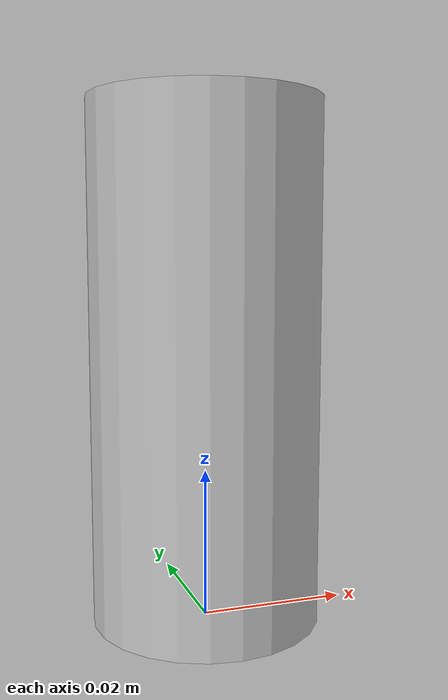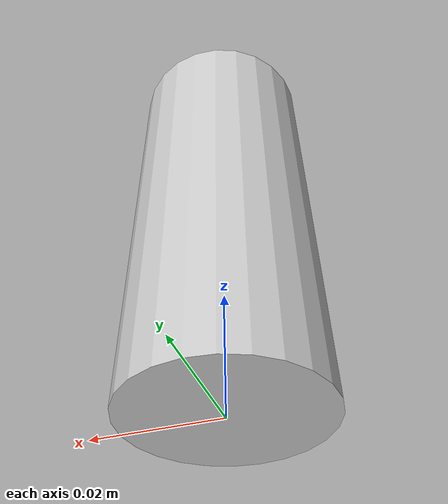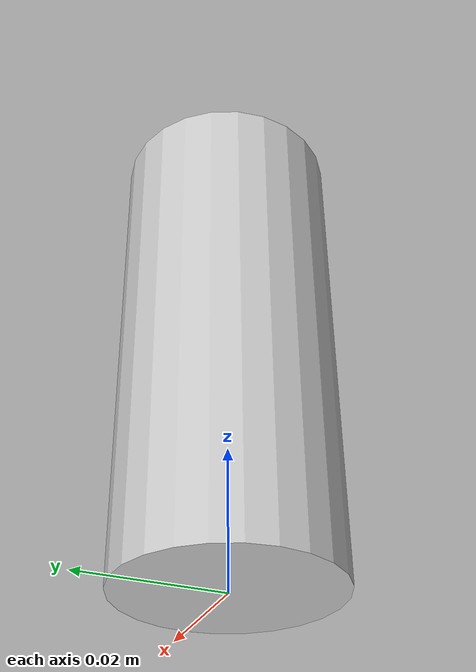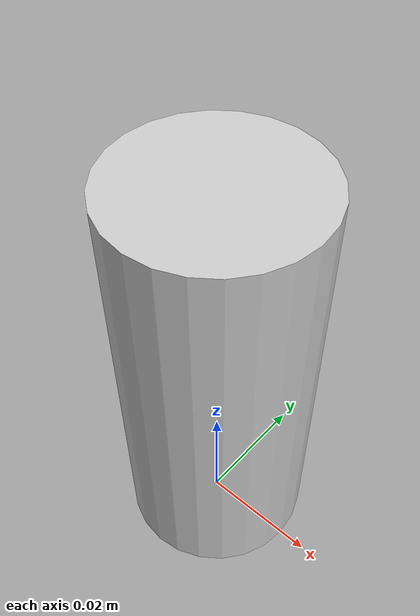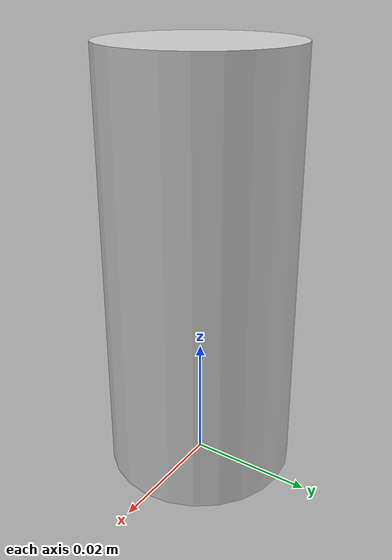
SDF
<?xml version="1.0" ?>
<sdf version="1.4">
  <model name="z_pringle">
    <link name="z_pringle_link">
      <inertial>
        <pose>-0.00 0.0 -0.005 0 0 0</pose>
        <mass>0.8</mass>
        <inertia>
          <ixx>0.001667</ixx>
	  <ixy>0.0</ixy>
	  <ixz>0.0</ixz>
	  <iyy>0.001667</iyy>
	  <iyz>0.0</iyz>
	  <izz>0.001667</izz>
	</inertia>
      </inertial>

      <visual name="z_pringle_visual">
        <pose>0 0 0 0 0 0 </pose>
        <material>
	  <lighting>1</lighting>
	  <ambient>0.2 0.2 0.2 1</ambient>
	  <diffuse>0.8 0.8 0.8 1</diffuse>
	  <specular>0.2 0.2 0.2 1</specular>
	  <emissive>0.85 0.85 0.85 1</emissive>
          <script>
            <uri>model://z_pringle/materials/scripts</uri>
            <uri>model://z_pringle/materials/textures</uri>
            <name>Z_pringle/Image</name>
          </script>
        </material>
        <geometry>
          <mesh>
            <uri>model://z_pringle/meshes/z_pringle.dae</uri>
	    <scale>0.4 0.4 0.3</scale>
          </mesh>
        </geometry>
      </visual>

      <collision name="z_pringle_collision">
        <pose>-0.0 0.0 +0.015 0.0 0.0 0.0</pose>
        <geometry>
	  <cylinder>
	    <radius>0.012</radius>
	    <length>0.04</length>
	  </cylinder>
        </geometry>
        <max_contacts>10</max_contacts>
        <surface>
          <contact>
	    <ode>
	      <max_vel>0.000</max_vel>
            </ode>
          </contact>
          <bounce/>
          <friction>
            <torsional>
              <ode/>
            </torsional>
            <ode>
              <mu>1</mu>
              <mu2>1</mu2>
            </ode>
          </friction>
        </surface>
      </collision>
      <self_collide>0</self_collide>
      <kinematic>0</kinematic>
    </link>
  </model>
</sdf>
